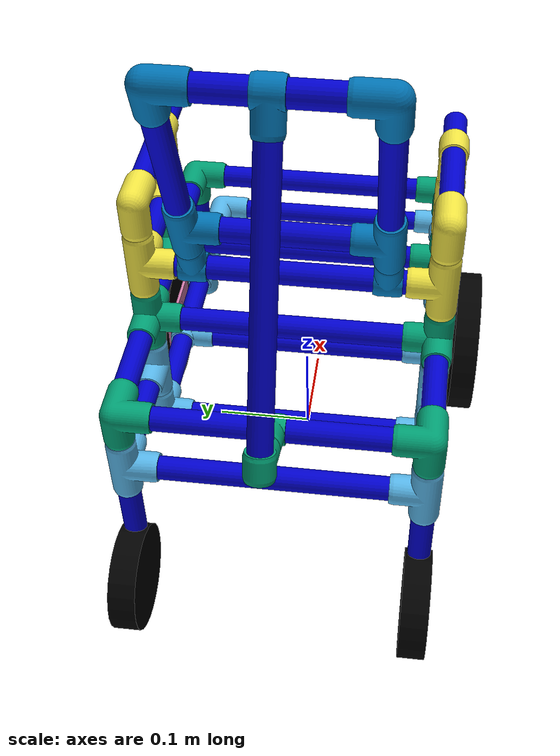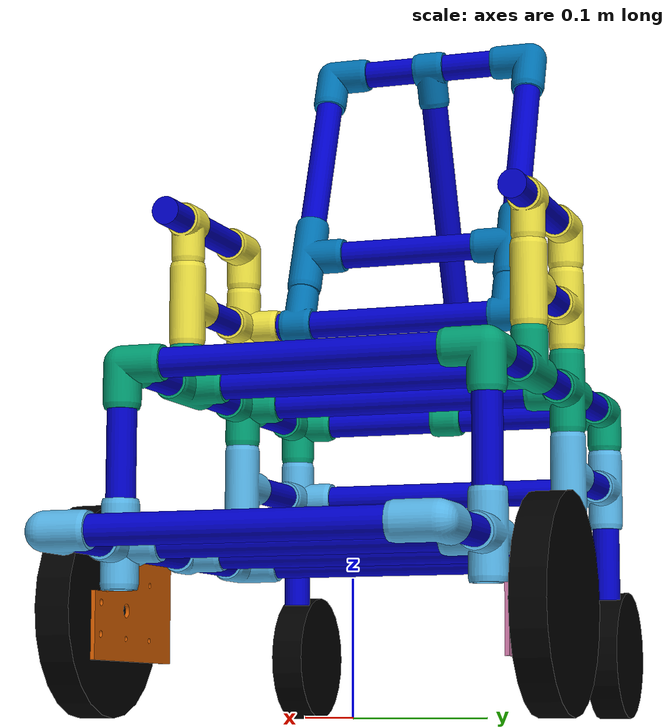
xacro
<?xml version="1.0"?>
<robot name="pvcchair" xmlns:xacro="http://www.ros.org/wiki/xacro">

  <xacro:include filename="$(find pvcchair_description)/urdf/includes/components/arms.xacro" />
  <xacro:include filename="$(find pvcchair_description)/urdf/includes/components/back.xacro" />
  <xacro:include filename="$(find pvcchair_description)/urdf/includes/components/base.xacro" />
  <xacro:include filename="$(find pvcchair_description)/urdf/includes/components/drive.xacro" />
  <xacro:include filename="$(find pvcchair_description)/urdf/includes/components/seat.xacro" />

  <link name="base_footprint" />

  <xacro:base parent="base_footprint" />

  <xacro:seat parent="base_link" />

  <xacro:arms parent="seat_link" />

  <xacro:back parent="arms_link" />

  <xacro:drive parent="base_link" />

</robot>

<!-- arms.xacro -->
<robot name="arms" xmlns:xacro="http://www.ros.org/wiki/xacro">

  <xacro:include filename="$(find pvcchair_description)/urdf/includes/parameters.xacro" />
  <xacro:include filename="$(find pvcchair_description)/urdf/includes/parts/connectors.xacro" />
  <xacro:include filename="$(find pvcchair_description)/urdf/includes/parts/pipes.xacro" />

  <xacro:macro name="arms" params="parent">
    <link name="arms_link">
      <inertial>
        <mass value="0.302884" />
        <origin xyz="0.059653 -0.000001 0.028246" />
        <inertia ixx="0.000004" ixy="0.000000" ixz="0.000000"
                                iyy="0.000001" iyz="0.000000"
                                               izz="0.000005" />
      </inertial>

      <xacro:ca xyz="0 ${-p2_hlen-c_offset} 0" rpy="0 0 ${-pi/2}" />
      <xacro:ca xyz="0 ${+p2_hlen+c_offset} 0" rpy="0 0 ${pi}" />
      <xacro:p4 xyz="${+c_offset+p4_hlen} ${-p2_hlen-c_offset} 0" rpy="0 ${pi/2} 0" />
      <xacro:p4 xyz="${+c_offset+p4_hlen} ${+p2_hlen+c_offset} 0" rpy="0 ${pi/2} 0" />
      <xacro:ce xyz="${+c_offset+p4_len+c_offset} ${-p2_hlen-c_offset} 0" rpy="0 0 ${pi/2}" />
      <xacro:ce xyz="${+c_offset+p4_len+c_offset} ${+p2_hlen+c_offset} 0" rpy="0 0 ${pi/2}" />
      <xacro:p8 xyz="0 ${-p2_hlen-c_offset} ${+c_offset+p8_hlen}" rpy="0 0 0" />
      <xacro:p8 xyz="0 ${+p2_hlen+c_offset} ${+c_offset+p8_hlen}" rpy="0 0 0" />
      <xacro:p8 xyz="${+c_offset+p4_len+c_offset} ${-p2_hlen-c_offset} ${+c_offset+p8_hlen}" rpy="0 0 0" />
      <xacro:p8 xyz="${+c_offset+p4_len+c_offset} ${+p2_hlen+c_offset} ${+c_offset+p8_hlen}" rpy="0 0 0" />
      <xacro:cd xyz="0 ${-p2_hlen-c_offset} ${c_offset+p8_len+c_offset}" rpy="${pi/2} 0 ${pi/2}" />
      <xacro:cd xyz="0 ${+p2_hlen+c_offset} ${c_offset+p8_len+c_offset}" rpy="${pi/2} 0 ${pi/2}" />
      <xacro:cf xyz="${+c_offset+p4_len+c_offset} ${-p2_hlen-c_offset} ${c_offset+p8_len+c_offset}" rpy="${-pi/2} 0 ${pi/2}" />
      <xacro:cf xyz="${+c_offset+p4_len+c_offset} ${+p2_hlen+c_offset} ${c_offset+p8_len+c_offset}" rpy="${-pi/2} 0 ${pi/2}" />
      <xacro:p6 xyz="${c_offset+p6_hlen} ${-p2_hlen-c_offset} ${c_offset+p8_len+c_offset}" rpy="0 ${pi/2} 0" />
      <xacro:p6 xyz="${c_offset+p6_hlen} ${+p2_hlen+c_offset} ${c_offset+p8_len+c_offset}" rpy="0 ${pi/2} 0" />
    </link>
    <joint name="arms_joint" type="fixed">
      <origin xyz="${-p4_len-2*c_offset} 0 ${p8_len+2*c_offset}" rpy="0 0 0" />
      <parent link="${parent}" />
      <child link="arms_link" />
    </joint>
  </xacro:macro>

</robot>

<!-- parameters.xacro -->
<robot name="parameters" xmlns:xacro="http://www.ros.org/wiki/xacro">
  <xacro:property name="p1_len" value="0.203200" />  <!-- in meters -->
  <xacro:property name="p2_len" value="0.241300" />
  <xacro:property name="p3_len" value="0.101600" />
  <xacro:property name="p4_len" value="0.088900" />
  <xacro:property name="p5_len" value="0.152400" />
  <xacro:property name="p6_len" value="0.146050" />
  <xacro:property name="p7_len" value="0.285750" />
  <xacro:property name="p8_len" value="0.038100" />
  <xacro:property name="p9_len" value="0.038100" />
  <xacro:property name="c_offset" value="0.0127" />
  <xacro:property name="gearbox_plate_offset" value="0.01" />
  <xacro:property name="wheel_radius" value="0.0762" />
  <xacro:property name="caster_radius" value="0.0508" />
  <xacro:property name="swivel_offset" value="0.02" />
  <xacro:property name="base_level" value="0.12" />
  <xacro:property name="back_angle_deg" value="20" />
  <xacro:property name="rest_angle_deg" value="48.8" />
  <xacro:property name="lock_angle_deg" value="20.5" />
  <!-- Derivative Quantities -->
  <xacro:property name="p1_hlen" value="${p1_len/2}" />
  <xacro:property name="p2_hlen" value="${p2_len/2}" />
  <xacro:property name="p3_hlen" value="${p3_len/2}" />
  <xacro:property name="p4_hlen" value="${p4_len/2}" />
  <xacro:property name="p5_hlen" value="${p5_len/2}" />
  <xacro:property name="p6_hlen" value="${p6_len/2}" />
  <xacro:property name="p7_hlen" value="${p7_len/2}" />
  <xacro:property name="p8_hlen" value="${p8_len/2}" />
  <xacro:property name="p9_hlen" value="${p9_len/2}" />
  <xacro:property name="back_angle_rad" value="${back_angle_deg*pi/180}" />
  <xacro:property name="rest_angle_rad" value="${rest_angle_deg*pi/180}" />
  <xacro:property name="lock_angle_rad" value="${lock_angle_deg*pi/180}" />
</robot>

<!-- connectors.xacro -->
<robot name="connectors" xmlns:xacro="http://www.ros.org/wiki/xacro">

  <xacro:macro name="connector" params="xyz rpy mesh_filename">
    <visual>
      <origin xyz="${xyz}" rpy="${rpy}" />
      <geometry>
        <mesh filename="package://pvcchair_description/meshes/${mesh_filename}" />
      </geometry>
    </visual>
    <collision>
      <origin xyz="${xyz}" rpy="${rpy}" />
      <geometry>
        <mesh filename="package://pvcchair_description/meshes/${mesh_filename}" />
      </geometry>
    </collision>
  </xacro:macro>

  <xacro:macro name="ca" params="xyz rpy">
    <xacro:connector xyz="${xyz}" rpy="${rpy}" mesh_filename="connectors/ca_4_way_t_connect.dae" />
  </xacro:macro>

  <xacro:macro name="cb" params="xyz rpy">
    <xacro:connector xyz="${xyz}" rpy="${rpy}" mesh_filename="connectors/cb_5_way_t_connect.dae" />
  </xacro:macro>

  <xacro:macro name="cc" params="xyz rpy">
    <xacro:connector xyz="${xyz}" rpy="${rpy}" mesh_filename="connectors/cc_3_way_y_connect.dae" />
  </xacro:macro>

  <xacro:macro name="cd" params="xyz rpy">
    <xacro:connector xyz="${xyz}" rpy="${rpy}" mesh_filename="connectors/cd_2_way_elbow.dae" />
  </xacro:macro>

  <xacro:macro name="ce" params="xyz rpy">
    <xacro:connector xyz="${xyz}" rpy="${rpy}" mesh_filename="connectors/ce_3_way_t_connect.dae" />
  </xacro:macro>

  <xacro:macro name="cf" params="xyz rpy">
    <xacro:connector xyz="${xyz}" rpy="${rpy}" mesh_filename="connectors/cf_3_way_slip.dae" />
  </xacro:macro>

</robot>

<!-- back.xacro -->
<robot name="back" xmlns:xacro="http://www.ros.org/wiki/xacro">

  <xacro:include filename="$(find pvcchair_description)/urdf/includes/parameters.xacro" />
  <xacro:include filename="$(find pvcchair_description)/urdf/includes/parts/connectors.xacro" />
  <xacro:include filename="$(find pvcchair_description)/urdf/includes/parts/pipes.xacro" />

  <xacro:macro name="back" params="parent">
    <link name="back_link">
      <inertial>
        <mass value="0.388326" />
        <origin xyz="-0.033398 -0.000000 0.106887" />
        <inertia ixx="0.000004" ixy="0.000000" ixz="0.000000"
                                iyy="0.000003" iyz="0.000000"
                                               izz="0.000002" />
      </inertial>

      <xacro:p2 xyz="0 0 0" rpy="0 ${pi/2} ${pi/2}" />
      <xacro:cf xyz="0 ${-p6_hlen-c_offset} 0" rpy="${pi/2} ${-back_angle_rad} 0" />
      <xacro:cf xyz="0 ${+p6_hlen+c_offset} 0" rpy="${pi/2} ${-back_angle_rad} 0" />
      <xacro:property name="p9_tran_1" value="${+c_offset+p9_hlen}" />
      <xacro:p9 xyz="${-p9_tran_1*sin(back_angle_rad)} ${-p6_hlen-c_offset} ${p9_tran_1*cos(back_angle_rad)}" rpy="0 ${-back_angle_rad} 0" />
      <xacro:p9 xyz="${-p9_tran_1*sin(back_angle_rad)} ${+p6_hlen+c_offset} ${p9_tran_1*cos(back_angle_rad)}" rpy="0 ${-back_angle_rad} 0" />
      <xacro:property name="ce_tran_1" value="${+c_offset+p9_len+c_offset}" />
      <xacro:ce xyz="${-ce_tran_1*sin(back_angle_rad)} ${-p6_hlen-c_offset} ${ce_tran_1*cos(back_angle_rad)}" rpy="0 ${-back_angle_rad} 0" />
      <xacro:ce xyz="${-ce_tran_1*sin(back_angle_rad)} ${+p6_hlen+c_offset} ${ce_tran_1*cos(back_angle_rad)}" rpy="0 ${back_angle_rad} ${pi}" />
      <xacro:p6 xyz="${-ce_tran_1*sin(back_angle_rad)} 0 ${ce_tran_1*cos(back_angle_rad)}" rpy="0 ${pi/2} ${pi/2}" />
      <xacro:property name="p5_tran_1" value="${+c_offset+p9_len+2*c_offset+p5_hlen}" />
      <xacro:p5 xyz="${-p5_tran_1*sin(back_angle_rad)} ${-p6_hlen-c_offset} ${p5_tran_1*cos(back_angle_rad)}" rpy="0 ${-back_angle_rad} 0" />
      <xacro:p5 xyz="${-p5_tran_1*sin(back_angle_rad)} ${+p6_hlen+c_offset} ${p5_tran_1*cos(back_angle_rad)}" rpy="0 ${-back_angle_rad} 0" />
      <xacro:property name="cd_tran_1" value="${+c_offset+p9_len+2*c_offset+p5_len+c_offset}" />
      <xacro:cd xyz="${-cd_tran_1*sin(back_angle_rad)} ${-p6_hlen-c_offset} ${cd_tran_1*cos(back_angle_rad)}" rpy="${pi} ${-back_angle_rad} 0" />
      <xacro:cd xyz="${-cd_tran_1*sin(back_angle_rad)} ${+p6_hlen+c_offset} ${cd_tran_1*cos(back_angle_rad)}" rpy="${pi/2} ${-back_angle_rad} 0" />
      <xacro:property name="p6_tran_1" value="${+c_offset+p9_len+2*c_offset+p5_len+c_offset}" />
      <xacro:p6 xyz="${-p6_tran_1*sin(back_angle_rad)} 0 ${p6_tran_1*cos(back_angle_rad)}" rpy="0 ${pi/2} ${pi/2}" />
      <xacro:cf xyz="${-p6_tran_1*sin(back_angle_rad)} 0 ${p6_tran_1*cos(back_angle_rad)}" rpy="${pi/2} ${-pi/2-back_angle_rad-rest_angle_rad} 0" />
      <xacro:property name="p7_tran_1" value="${+c_offset+p9_len+2*c_offset+p5_len+c_offset}" />
      <xacro:property name="p7_tran_2" value="${c_offset+p7_hlen}" />
      <xacro:property name="rest_angle_1" value="${back_angle_rad+rest_angle_rad}" />
      <xacro:p7 xyz="${-p7_tran_1*sin(back_angle_rad)-p7_tran_2*cos(rest_angle_1)} 0 ${p7_tran_1*cos(back_angle_rad)-p7_tran_2*sin(rest_angle_1)}" rpy="0 ${pi/2-back_angle_rad-rest_angle_rad} 0" />
    </link>
    <joint name="back_joint" type="fixed">
      <origin xyz="0 0 0" rpy="0 0 0" />
      <parent link="${parent}" />
      <child link="back_link" />
    </joint>
  </xacro:macro>

</robot>

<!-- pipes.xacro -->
<robot name="pipes" xmlns:xacro="http://www.ros.org/wiki/xacro">

  <xacro:macro name="pipe" params="xyz rpy len">
    <visual>
      <origin xyz="${xyz}" rpy="${rpy}" />
      <geometry>
        <cylinder radius="0.010668" length="${len}" />
      </geometry>
      <material name="blue">
        <color rgba="0 0 0.8 1" />
      </material>
    </visual>
    <collision>
      <origin xyz="${xyz}" rpy="${rpy}" />
      <geometry>
        <cylinder radius="0.010668" length="${len}" />
      </geometry>
    </collision>
  </xacro:macro>

  <xacro:macro name="p1" params="xyz rpy">
    <xacro:pipe xyz="${xyz}" rpy="${rpy}" len="${p1_len}" />
  </xacro:macro>

  <xacro:macro name="p2" params="xyz rpy">
    <xacro:pipe xyz="${xyz}" rpy="${rpy}" len="${p2_len}" />
  </xacro:macro>

  <xacro:macro name="p3" params="xyz rpy">
    <xacro:pipe xyz="${xyz}" rpy="${rpy}" len="${p3_len}" />
  </xacro:macro>

  <xacro:macro name="p4" params="xyz rpy">
    <xacro:pipe xyz="${xyz}" rpy="${rpy}" len="${p4_len}" />
  </xacro:macro>

  <xacro:macro name="p5" params="xyz rpy">
    <xacro:pipe xyz="${xyz}" rpy="${rpy}" len="${p5_len}" />
  </xacro:macro>

  <xacro:macro name="p6" params="xyz rpy">
    <xacro:pipe xyz="${xyz}" rpy="${rpy}" len="${p6_len}" />
  </xacro:macro>

  <xacro:macro name="p7" params="xyz rpy">
    <xacro:pipe xyz="${xyz}" rpy="${rpy}" len="${p7_len}" />
  </xacro:macro>

  <xacro:macro name="p8" params="xyz rpy">
    <xacro:pipe xyz="${xyz}" rpy="${rpy}" len="${p8_len}" />
  </xacro:macro>

  <xacro:macro name="p9" params="xyz rpy">
    <xacro:pipe xyz="${xyz}" rpy="${rpy}" len="${p9_len}" />
  </xacro:macro>

</robot>

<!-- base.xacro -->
<robot name="base" xmlns:xacro="http://www.ros.org/wiki/xacro">

  <xacro:include filename="$(find pvcchair_description)/urdf/includes/parameters.xacro" />
  <xacro:include filename="$(find pvcchair_description)/urdf/includes/parts/connectors.xacro" />
  <xacro:include filename="$(find pvcchair_description)/urdf/includes/parts/pipes.xacro" />

  <xacro:macro name="base" params="parent">
    <link name="base_link">
      <inertial>
        <mass value="0.86244" />
        <origin xyz="-0.002543 0.000001 0.020084" />
        <inertia ixx="0.000010" ixy="0.000000" ixz="0.000002"
                                iyy="0.000016" iyz="0.000000"
                                               izz="0.000024" />
      </inertial>

      <xacro:p2 xyz="0 0 0" rpy="0 ${pi/2} ${pi/2}" />
      <!-- front section -->
      <xacro:cf xyz="0 ${-p2_hlen-c_offset} 0" rpy="0 ${pi/2} 0" />
      <xacro:cf xyz="0 ${+p2_hlen+c_offset} 0" rpy="0 ${pi/2} ${pi}" />
      <xacro:p1 xyz="0 ${-p2_hlen-c_offset} 0" rpy="0 ${pi/2} 0" />
      <xacro:p1 xyz="0 ${+p2_hlen+c_offset} 0" rpy="0 ${pi/2} 0" />
      <xacro:cb xyz="${+p1_hlen+c_offset} ${-p2_hlen-c_offset} 0" rpy="0 0 ${-pi/2}" />
      <xacro:cb xyz="${+p1_hlen+c_offset} ${+p2_hlen+c_offset} 0" rpy="0 0 ${pi/2}" />
      <xacro:p2 xyz="${+p1_hlen+c_offset} 0 0" rpy="0 ${pi/2} ${pi/2}" />
      <xacro:p3 xyz="${+p1_hlen+c_offset} ${-p2_hlen-c_offset} ${+p3_hlen+c_offset}" rpy="0 0 0" />
      <xacro:p3 xyz="${+p1_hlen+c_offset} ${+p2_hlen+c_offset} ${+p3_hlen+c_offset}" rpy="0 0 0" />
      <xacro:p4 xyz="${+p1_hlen+2*c_offset+p4_hlen} ${-p2_hlen-c_offset} 0" rpy="0 ${pi/2} 0" />
      <xacro:p4 xyz="${+p1_hlen+2*c_offset+p4_hlen} ${+p2_hlen+c_offset} 0" rpy="0 ${pi/2} 0" />
      <xacro:cd xyz="${+p1_hlen+2*c_offset+p4_len+c_offset} ${-p2_hlen-c_offset} 0" rpy="0 ${-pi/2} ${-pi/2}" />
      <xacro:cd xyz="${+p1_hlen+2*c_offset+p4_len+c_offset} ${+p2_hlen+c_offset} 0" rpy="0 ${pi/2} ${-pi/2}" />
      <xacro:p2 xyz="${+p1_hlen+2*c_offset+p4_len+c_offset} 0 0" rpy="0 ${pi/2} ${pi/2}" />
      <!-- back section -->
      <xacro:cc xyz="${-p1_hlen-c_offset} ${-p2_hlen-c_offset} 0" rpy="0 0 ${pi/2}" />
      <xacro:cc xyz="${-p1_hlen-c_offset} ${+p2_hlen+c_offset} 0" rpy="0 0 0" />
      <xacro:p2 xyz="${-p1_hlen-c_offset} 0 0" rpy="0 ${pi/2} ${pi/2}" />
      <xacro:p9 xyz="${-p1_hlen-c_offset} ${-p2_hlen-c_offset} ${+p9_hlen+c_offset}" rpy="0 0 0" />
      <xacro:p9 xyz="${-p1_hlen-c_offset} ${+p2_hlen+c_offset} ${+p9_hlen+c_offset}" rpy="0 0 0" />
      <xacro:ce xyz="${-p1_hlen-c_offset} ${-p2_hlen-c_offset} ${+c_offset+p9_len+c_offset}" rpy="0 0 ${pi/2}" />
      <xacro:ce xyz="${-p1_hlen-c_offset} ${+p2_hlen+c_offset} ${+c_offset+p9_len+c_offset}" rpy="0 0 ${pi/2}" />
      <xacro:p9 xyz="${-p1_hlen-c_offset} ${-p2_hlen-c_offset} ${+c_offset+p9_len+2*c_offset+p9_hlen}" rpy="0 0 0" />
      <xacro:p9 xyz="${-p1_hlen-c_offset} ${+p2_hlen+c_offset} ${+c_offset+p9_len+2*c_offset+p9_hlen}" rpy="0 0 0" />
      <xacro:p3 xyz="${-p1_hlen-2*c_offset-p3_hlen} ${-p2_hlen-c_offset} ${+c_offset+p9_len+c_offset}" rpy="0 ${pi/2} 0" />
      <xacro:p3 xyz="${-p1_hlen-2*c_offset-p3_hlen} ${+p2_hlen+c_offset} ${+c_offset+p9_len+c_offset}" rpy="0 ${pi/2} 0" />
      <xacro:ca xyz="${-p1_hlen-2*c_offset-p3_len-c_offset} ${-p2_hlen-c_offset} ${+c_offset+p9_len+c_offset}" rpy="0 0 ${-pi/2}" />
      <xacro:ca xyz="${-p1_hlen-2*c_offset-p3_len-c_offset} ${+p2_hlen+c_offset} ${+c_offset+p9_len+c_offset}" rpy="0 0 ${pi}" />
      <xacro:p2 xyz="${-p1_hlen-2*c_offset-p3_len-c_offset} 0 ${+c_offset+p9_len+c_offset}" rpy="0 ${pi/2} ${pi/2}" />
      <xacro:p9 xyz="${-p1_hlen-2*c_offset-p3_len-c_offset} ${-p2_hlen-c_offset} ${+c_offset+p9_len+2*c_offset+p9_hlen}" rpy="0 0 0" />
      <xacro:p9 xyz="${-p1_hlen-2*c_offset-p3_len-c_offset} ${+p2_hlen+c_offset} ${+c_offset+p9_len+2*c_offset+p9_hlen}" rpy="0 0 0" />
      <xacro:p4 xyz="${-p1_hlen-2*c_offset-p3_len-c_offset} ${-p2_hlen-c_offset} ${+c_offset+p9_len+c_offset-p4_hlen}" rpy="0 0 0" />
      <xacro:p4 xyz="${-p1_hlen-2*c_offset-p3_len-c_offset} ${+p2_hlen+c_offset} ${+c_offset+p9_len+c_offset-p4_hlen}" rpy="0 0 0" />
    </link>
    <joint name="base_joint" type="fixed">
      <origin xyz="0 0 ${base_level}" rpy="0 0 0" />
      <parent link="${parent}" />
      <child link="base_link" />
    </joint>
  </xacro:macro>

</robot>

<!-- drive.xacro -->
<robot name="motion" xmlns:xacro="http://www.ros.org/wiki/xacro">

  <xacro:include filename="$(find pvcchair_description)/urdf/includes/parameters.xacro" />
  <xacro:include filename="$(find pvcchair_description)/urdf/includes/parts/caster.xacro" />
  <xacro:include filename="$(find pvcchair_description)/urdf/includes/parts/gearbox_plate.xacro" />
  <xacro:include filename="$(find pvcchair_description)/urdf/includes/parts/wheel.xacro" />

  <xacro:macro name="drive" params="parent">
    <xacro:gearbox_plate
      suffix="right"
      parent="${parent}"
      xyz="${p1_hlen+c_offset+gearbox_plate_offset} ${-p2_hlen-c_offset-0.015} ${gearbox_plate_offset}" />
    <xacro:gearbox_plate
      suffix="left"
      parent="${parent}"
      xyz="${p1_hlen+c_offset+gearbox_plate_offset} ${+p2_hlen+c_offset+0.015} ${gearbox_plate_offset}" />

    <xacro:wheel
      suffix="right"
      parent="gearbox_plate_right_link"
      xyz="-0.052 -0.02 -0.054" />
    <xacro:wheel
      suffix="left"
      parent="gearbox_plate_left_link"
      xyz="-0.052 +0.02 -0.054" />

    <xacro:caster
      suffix="right"
      parent="${parent}"
      xyz="${-p1_hlen-2*c_offset-p3_len-c_offset+swivel_offset} ${-p2_hlen-c_offset} ${c_offset+p9_len}" />
    <xacro:caster
      suffix="left"
      parent="${parent}"
      xyz="${-p1_hlen-2*c_offset-p3_len-c_offset+swivel_offset} ${+p2_hlen+c_offset} ${c_offset+p9_len}" />
  </xacro:macro>

</robot>

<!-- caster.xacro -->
<robot name="caster" xmlns:xacro="http://www.ros.org/wiki/xacro">

  <xacro:include filename="$(find pvcchair_description)/urdf/includes/parameters.xacro" />

  <xacro:macro name="caster" params="suffix parent xyz">
    <link name="swivel_${suffix}_link">
      <inertial>
        <mass value="0.2" />
        <origin xyz="0 0 0" />
        <inertia ixx="0.000333" ixy="0.000000" ixz="0.000000"
                                iyy="0.000333" iyz="0.000000"
                                               izz="0.000333" />
      </inertial>
    </link>
    <joint name="swivel_${suffix}" type="continuous">
      <axis xyz="0 0 1" />
      <origin xyz="${xyz}" rpy="0 0 0" />
      <parent link="${parent}" />
      <child link="swivel_${suffix}_link" />
    </joint>

    <link name="caster_${suffix}_link">
      <inertial>
        <mass value="0.040000" />
        <origin xyz="0 0 0" />
        <inertia ixx="0.000060" ixy="0.000000" ixz="0.000000"
                                iyy="0.000060" iyz="0.000000"
                                               izz="0.000116" />
      </inertial>
      <visual>
        <origin xyz="0 0 0" rpy="${pi/2} 0 0" />
        <geometry>
          <cylinder radius="${caster_radius}" length="0.0254" />
        </geometry>
        <material name="black">
          <color rgba="0 0 0 1" />
        </material>
      </visual>
      <collision>
        <origin xyz="0 0 0" rpy="${pi/2} 0 0" />
        <geometry>
          <cylinder radius="${caster_radius}" length="0.0254" />
        </geometry>
      </collision>
    </link>
    <joint name="caster_${suffix}" type="continuous">
      <axis xyz="0 1 0" />
      <origin xyz="${-caster_radius+0.005} 0 ${-c_offset-p9_len-base_level+caster_radius}" rpy="0 0 0" />
      <parent link="swivel_${suffix}_link" />
      <child link="caster_${suffix}_link" />
    </joint>
  </xacro:macro>

</robot>

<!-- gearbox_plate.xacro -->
<robot name="gearbox_plate" xmlns:xacro="http://www.ros.org/wiki/xacro">

  <xacro:macro name="gearbox_plate" params="suffix parent xyz">
    <link name="gearbox_plate_${suffix}_link">
      <inertial>
        <mass value="0.080099" />
        <origin xyz="-0.072510 0.001500 0.049147" />
        <inertia ixx="0.000051" ixy="0.000000" ixz="0.000017"
                                iyy="0.000150" iyz="0.000000"
                                               izz="0.000099" />
      </inertial>
      <visual>
        <origin xyz="0 0 0" rpy="0 0 0" />
        <geometry>
          <mesh filename="package://pvcchair_description/meshes/gearbox_plate.dae" />
        </geometry>
      </visual>
      <collision>
        <origin xyz="0 0 0" rpy="0 0 0" />
        <geometry>
          <mesh filename="package://pvcchair_description/meshes/gearbox_plate.dae" />
        </geometry>
      </collision>
    </link>
    <joint name="gearbox_plate_${suffix}_joint" type="fixed">
      <origin xyz="${xyz}" rpy="0 0 0" />
      <parent link="${parent}" />
      <child link="gearbox_plate_${suffix}_link" />
    </joint>
  </xacro:macro>

</robot>

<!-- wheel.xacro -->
<robot name="wheel" xmlns:xacro="http://www.ros.org/wiki/xacro">

  <xacro:include filename="$(find pvcchair_description)/urdf/includes/parameters.xacro" />

  <xacro:macro name="wheel" params="suffix parent xyz">
    <link name="wheel_${suffix}_link">
      <inertial>
        <mass value="0.020000" />
        <origin xyz="0 0 0" />
        <inertia ixx="0.000030" ixy="0.000000" ixz="0.000000"
                                iyy="0.000030" iyz="0.000000"
                                               izz="0.000058" />
      </inertial>
      <visual>
        <origin xyz="0 0 0" rpy="${pi/2} 0 0" />
        <geometry>
          <cylinder radius="${wheel_radius}" length="0.0254" />
        </geometry>
        <material name="black">
          <color rgba="0 0 0 1" />
        </material>
      </visual>
      <collision>
        <origin xyz="0 0 0" rpy="${pi/2} 0 0" />
        <geometry>
          <cylinder radius="${wheel_radius}" length="0.0254" />
        </geometry>
      </collision>
    </link>
    <joint name="wheel_${suffix}" type="continuous">
      <axis xyz="0 1 0" />
      <origin xyz="${xyz}" rpy="0 0 0" />
      <parent link="${parent}" />
      <child link="wheel_${suffix}_link" />
    </joint>
  </xacro:macro>

</robot>

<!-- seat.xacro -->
<robot name="seat" xmlns:xacro="http://www.ros.org/wiki/xacro">

  <xacro:include filename="$(find pvcchair_description)/urdf/includes/parameters.xacro" />
  <xacro:include filename="$(find pvcchair_description)/urdf/includes/parts/connectors.xacro" />
  <xacro:include filename="$(find pvcchair_description)/urdf/includes/parts/pipes.xacro" />

  <xacro:macro name="seat" params="parent">
    <link name="seat_link">
      <inertial>
        <mass value="0.624033" />
        <origin xyz="-0.071895 0.000000 0.001845" />
        <inertia ixx="0.000006" ixy="0.000000" ixz="0.000000"
                                iyy="0.000007" iyz="0.000000"
                                               izz="0.000013" />
      </inertial>

      <xacro:p2 xyz="0 0 0" rpy="0 ${pi/2} ${pi/2}" />
      <!-- front section -->
      <xacro:ca xyz="0 ${-p2_hlen-c_offset} 0" rpy="0 ${pi/2} 0" />
      <xacro:ca xyz="0 ${+p2_hlen+c_offset} 0" rpy="0 ${pi/2} ${pi}" />
      <xacro:p8 xyz="0 ${-p2_hlen-c_offset} ${+c_offset+p8_hlen}" rpy="0 0 0" />
      <xacro:p8 xyz="0 ${+p2_hlen+c_offset} ${+c_offset+p8_hlen}" rpy="0 0 0" />
      <xacro:p4 xyz="${+c_offset+p4_hlen} ${-p2_hlen-c_offset} 0" rpy="0 ${pi/2} 0" />
      <xacro:p4 xyz="${+c_offset+p4_hlen} ${+p2_hlen+c_offset} 0" rpy="0 ${pi/2} 0" />
      <xacro:cc xyz="${+c_offset+p4_len+c_offset} ${-p2_hlen-c_offset} 0" rpy="${pi/2} 0 ${pi}" />
      <xacro:cc xyz="${+c_offset+p4_len+c_offset} ${+p2_hlen+c_offset} 0" rpy="${pi} 0 ${pi}" />
      <xacro:p2 xyz="${+c_offset+p4_len+c_offset} 0 0" rpy="0 ${pi/2} ${pi/2}" />
      <!-- back section -->
      <xacro:p4 xyz="${-c_offset-p4_hlen} ${-p2_hlen-c_offset} 0" rpy="0 ${pi/2} 0" />
      <xacro:p4 xyz="${-c_offset-p4_hlen} ${+p2_hlen+c_offset} 0" rpy="0 ${pi/2} 0" />
      <xacro:cb xyz="${-c_offset-p4_len-c_offset} ${-p2_hlen-c_offset} 0" rpy="0 0 ${-pi/2}" />
      <xacro:cb xyz="${-c_offset-p4_len-c_offset} ${+p2_hlen+c_offset} 0" rpy="0 0 ${pi/2}" />
      <xacro:p2 xyz="${-c_offset-p4_len-c_offset} 0 0" rpy="0 ${pi/2} ${pi/2}" />
      <xacro:p8 xyz="${-c_offset-p4_len-c_offset} ${-p2_hlen-c_offset} ${+c_offset+p8_hlen}" rpy="0 0 0" />
      <xacro:p8 xyz="${-c_offset-p4_len-c_offset} ${+p2_hlen+c_offset} ${+c_offset+p8_hlen}" rpy="0 0 0" />
      <xacro:p3 xyz="${-c_offset-p4_len-2*c_offset-p3_hlen} ${-p2_hlen-c_offset} 0" rpy="0 ${pi/2} 0" />
      <xacro:p3 xyz="${-c_offset-p4_len-2*c_offset-p3_hlen} ${+p2_hlen+c_offset} 0" rpy="0 ${pi/2} 0" />
      <xacro:cc xyz="${-c_offset-p4_len-2*c_offset-p3_len-c_offset} ${-p2_hlen-c_offset} 0" rpy="${pi} 0 0" />
      <xacro:cc xyz="${-c_offset-p4_len-2*c_offset-p3_len-c_offset} ${+p2_hlen+c_offset} 0" rpy="${pi/2} 0 0" />
      <xacro:p2 xyz="${-c_offset-p4_len-2*c_offset-p3_len-c_offset} 0 0" rpy="0 ${pi/2} ${pi/2}" />
      <xacro:cf xyz="${-c_offset-p4_len-2*c_offset-p3_len-c_offset} 0 0" rpy="${pi/2} ${-pi/2+lock_angle_rad} 0" />
      <xacro:property name="p9_tran_0" value="${+c_offset+p9_hlen}" />
      <xacro:p9 xyz="${-c_offset-p4_len-2*c_offset-p3_len-c_offset-p9_tran_0*cos(lock_angle_rad)} 0 ${p9_tran_0*sin(lock_angle_rad)}" rpy="0 ${+pi/2+lock_angle_rad} 0" />
      <xacro:property name="cf_tran_0" value="${+c_offset+p9_len+c_offset}" />
      <xacro:cf xyz="${-c_offset-p4_len-2*c_offset-p3_len-c_offset-cf_tran_0*cos(lock_angle_rad)} 0 ${cf_tran_0*sin(lock_angle_rad)}" rpy="${-lock_angle_rad} 0 ${-pi/2}" />
    </link>
    <joint name="seat_joint" type="fixed">
      <origin xyz="0 0 ${p3_len+2*c_offset}" rpy="0 0 0" />
      <parent link="${parent}" />
      <child link="seat_link" />
    </joint>
  </xacro:macro>

</robot>
